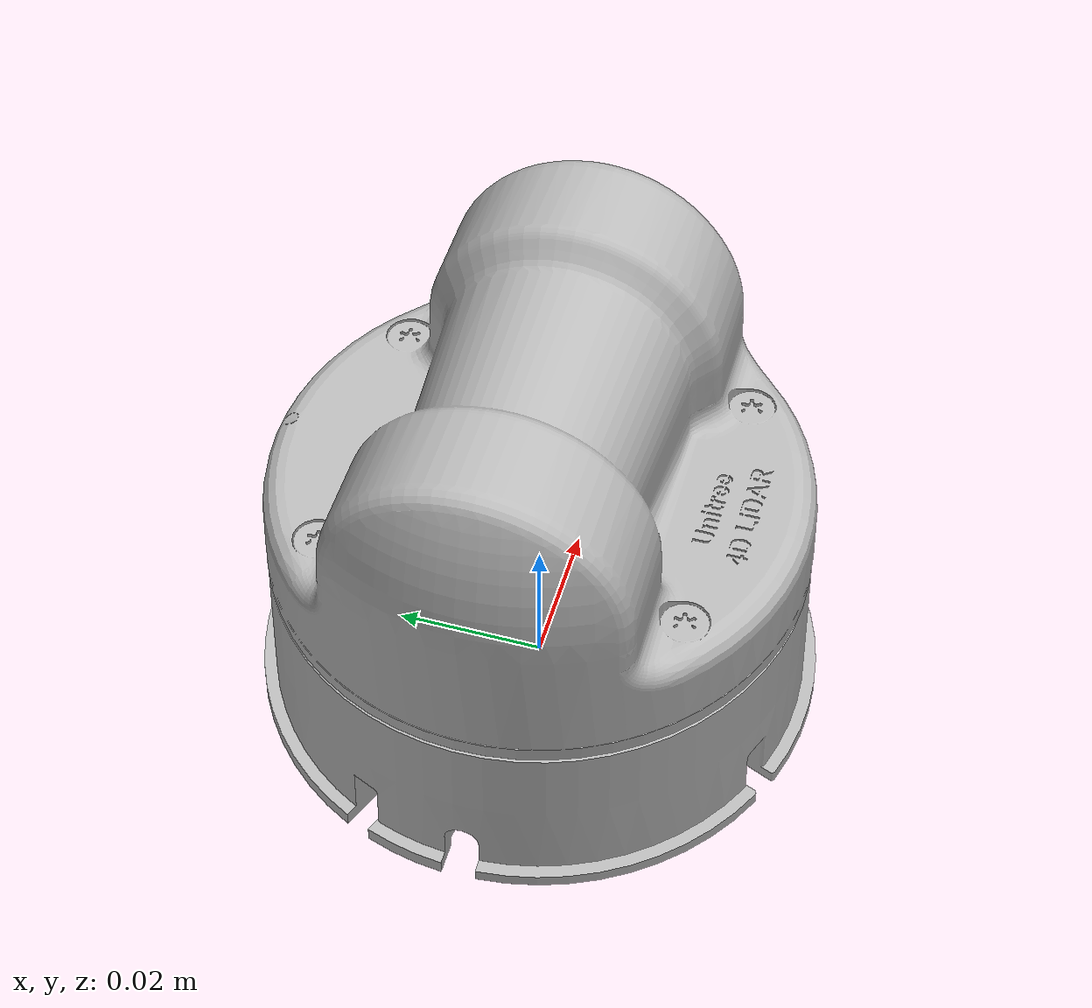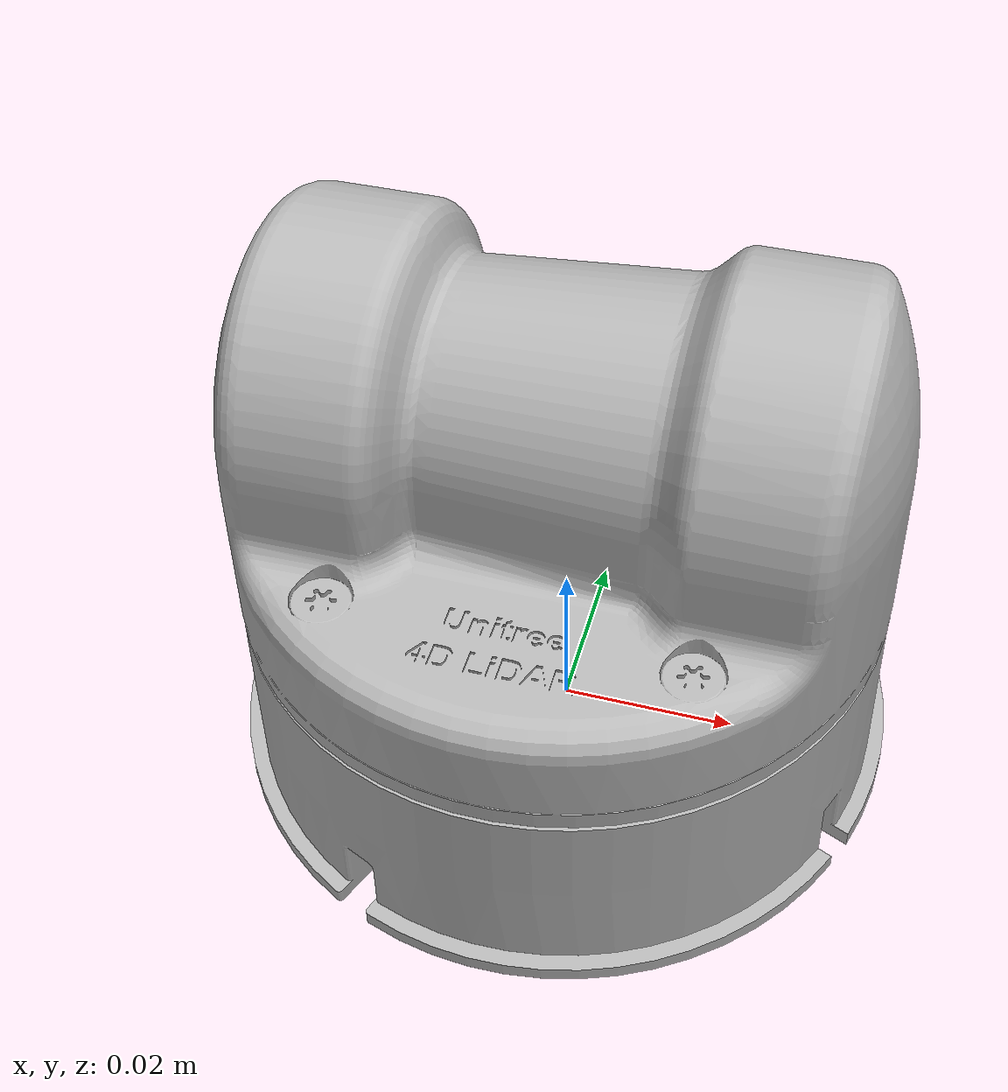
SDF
<?xml version="1.0" encoding="UTF-8"?>
<sdf version="1.9">
  <model name="unitree_l2">
    <self_collide>false</self_collide>
    <static>false</static>

    <link name="l2_base_link">
      <gravity>false</gravity>
      <self_collide>false</self_collide>
      <inertial>
        <mass>0.000001</mass>
        <inertia>
          <ixx>1e-12</ixx><iyy>1e-12</iyy><izz>1e-12</izz>
          <ixy>0</ixy><ixz>0</ixz><iyz>0</iyz>
        </inertia>
      </inertial>
      <visual name="l2_base_visual">
        <geometry>
          <mesh>
            <scale>0.001 0.001 0.001</scale>
            <uri>model://unitree_l2/meshes/unitree_l2_base.obj</uri>
          </mesh>
        </geometry>
      </visual>
    </link>

    <link name="l2_rotor_link">
      <gravity>false</gravity>
      <self_collide>false</self_collide>
      <inertial>
        <mass>0.000001</mass>
        <inertia>
          <ixx>1e-12</ixx><iyy>1e-12</iyy><izz>1e-12</izz>
          <ixy>0</ixy><ixz>0</ixz><iyz>0</iyz>
        </inertia>
      </inertial>
      <visual name="l2_rotor_visual">
        <geometry>
          <mesh>
            <scale>0.001 0.001 0.001</scale>
            <uri>model://unitree_l2/meshes/unitree_l2_rotor.obj</uri>
          </mesh>
        </geometry>
      </visual>
    </link>
    <joint name="l2_rotor_joint" type="revolute">
      <parent>l2_base_link</parent>
      <child>l2_rotor_link</child>
      <!-- Both meshes now have the same origin, so this is intentionally zero. -->
      <pose>0 0 0 0 0 0</pose>
      <axis>
        <xyz>0 0 1</xyz>
        <limit>
          <!-- The animation plugin wraps the angle into this interval. -->
          <lower>-3.141592653589793</lower>
          <upper>3.141592653589793</upper>
          <effort>1</effort>
          <velocity>40</velocity>
        </limit>
        <dynamics><damping>0</damping><friction>0</friction></dynamics>
      </axis>
    </joint>

    <!-- Stable optical / point-cloud frame: the ray model is deliberately not
         parented to the animated mesh, because L2 packets are expressed in a
         non-rotating sensor frame. -->
    <link name="l2_lidar_link">
      <gravity>false</gravity>
      <self_collide>false</self_collide>
      <inertial>
        <mass>0.000001</mass>
        <inertia>
          <ixx>1e-12</ixx><iyy>1e-12</iyy><izz>1e-12</izz>
          <ixy>0</ixy><ixz>0</ixz><iyz>0</iyz>
        </inertia>
      </inertial>

      <sensor name="l2_normal" type="gpu_lidar">
        <topic>/unitree_l2/normal/scan</topic>
        <always_on>false</always_on>
        <update_rate>5.55</update_rate>
        <visualize>true</visualize>
        <ray>
          <scan>
            <horizontal>
              <samples>288</samples><resolution>1</resolution>
              <min_angle>-3.141592653589793</min_angle>
              <max_angle>3.141592653589793</max_angle>
            </horizontal>
            <vertical>
              <samples>64</samples><resolution>1</resolution>
              <min_angle>0</min_angle>
              <max_angle>1.570796326794897</max_angle>
            </vertical>
          </scan>
          <range><min>0.05</min><max>30.0</max><resolution>0.0045</resolution></range>
        </ray>
      </sensor>

      <!-- L2 NAGE (negative-angle) mode. The selected ROS test bridge subscribes
           to exactly one of the two lidar topics, so only that mode renders. -->
      <sensor name="l2_negative" type="gpu_lidar">
        <topic>/unitree_l2/negative/scan</topic>
        <always_on>false</always_on>
        <update_rate>5.55</update_rate>
        <visualize>true</visualize>
        <ray>
          <scan>
            <horizontal>
              <samples>288</samples><resolution>1</resolution>
              <min_angle>-3.141592653589793</min_angle>
              <max_angle>3.141592653589793</max_angle>
            </horizontal>
            <vertical>
              <samples>64</samples><resolution>1</resolution>
              <min_angle>-0.104719755119660</min_angle>
              <max_angle>1.570796326794897</max_angle>
            </vertical>
          </scan>
          <range><min>0.05</min><max>30.0</max><resolution>0.0045</resolution></range>
        </ray>
      </sensor>

      <sensor name="l2_imu" type="imu">
        <topic>/unitree_l2/imu</topic>
        <always_on>1</always_on>
        <update_rate>500</update_rate>
      </sensor>
    </link>
    <joint name="l2_lidar_joint" type="fixed">
      <parent>l2_base_link</parent>
      <child>l2_lidar_link</child>
    </joint>

    <!-- Cosmetic kinematic animation for the visible low-speed measurement
         core. The 216-Hz internal mirror is represented by the 3D ray grid,
         not by a second visible moving mesh. -->
    <plugin filename="libUnitreeL2Rotor.so" name="sverk::sim::UnitreeL2Rotor">
      <joint_name>l2_rotor_joint</joint_name>
      <rotation_hz>5.55</rotation_hz>
    </plugin>
  </model>
</sdf>
